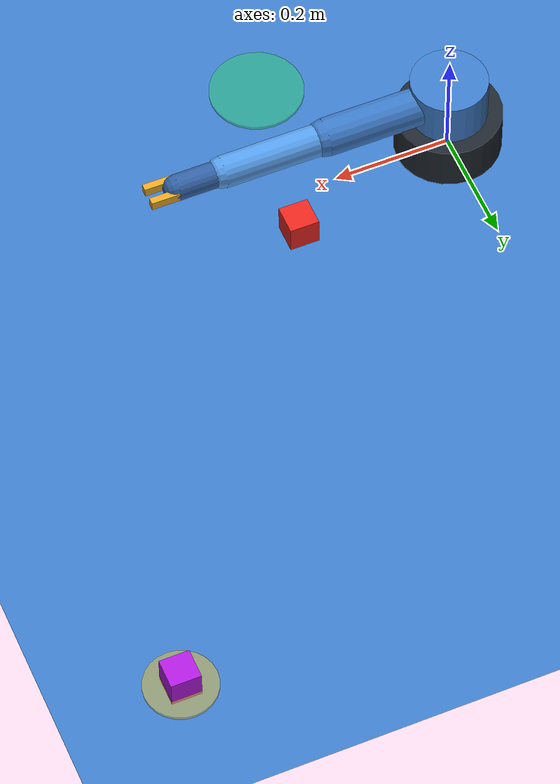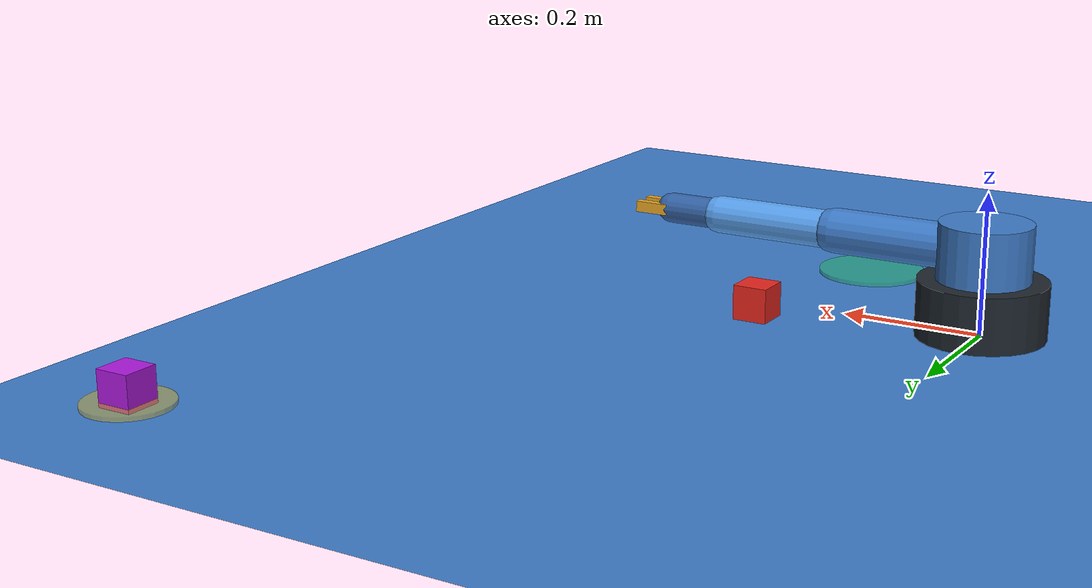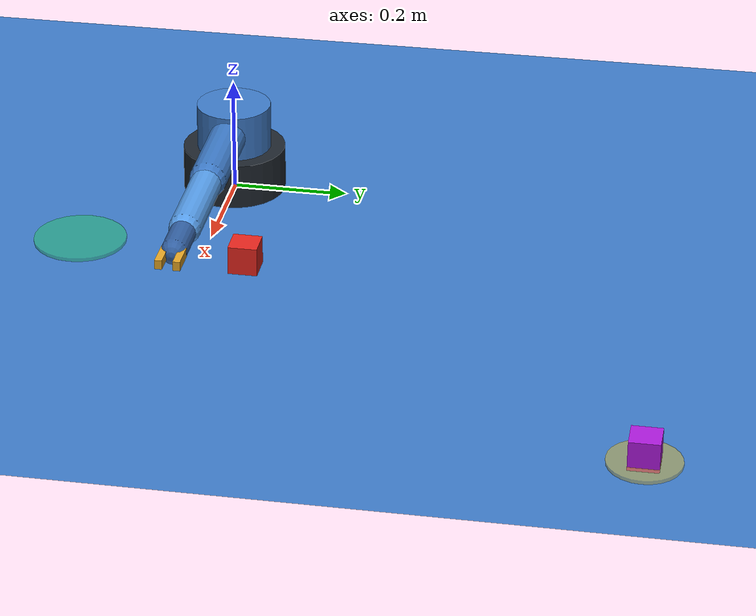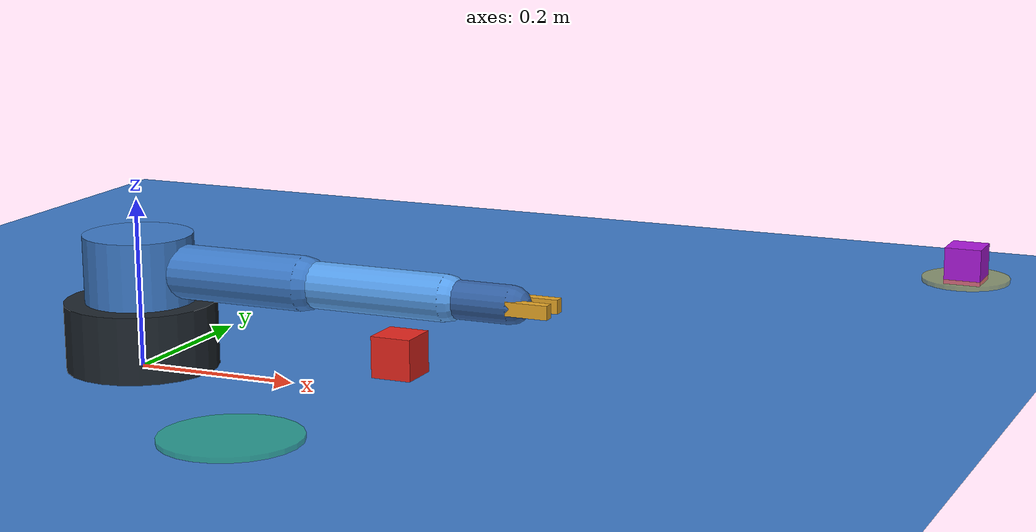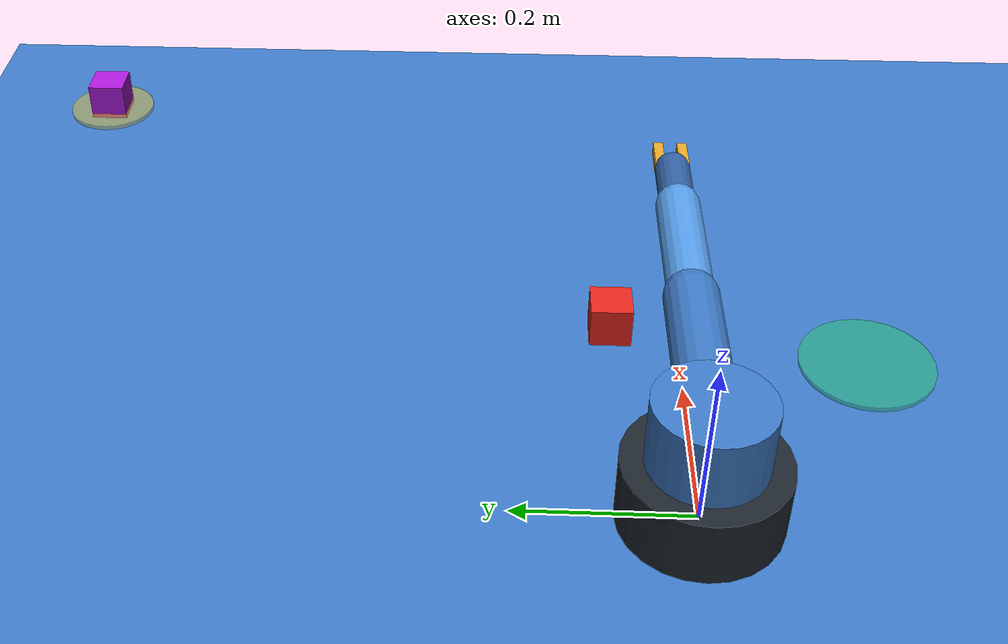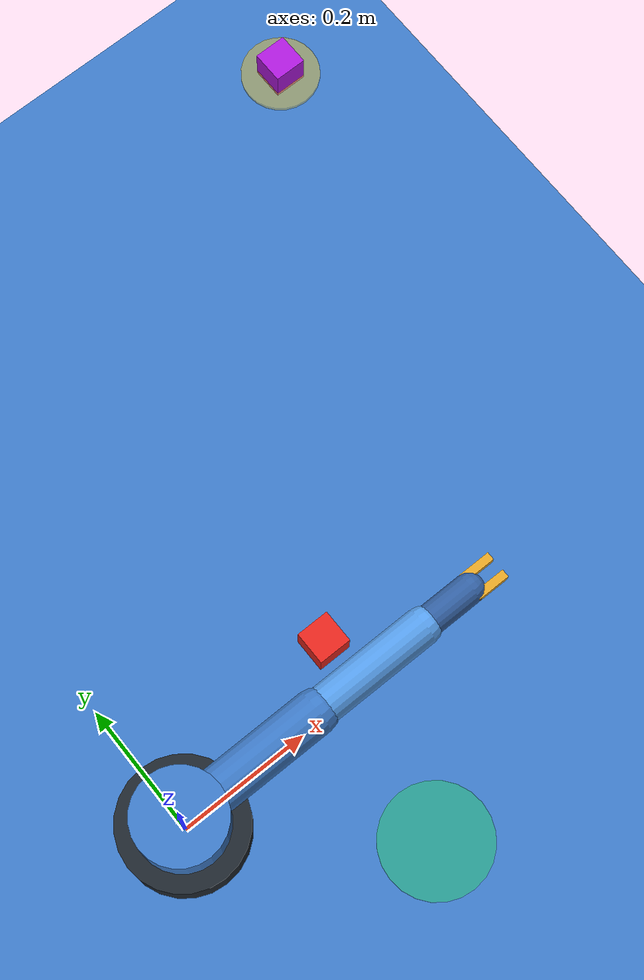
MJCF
<mujoco model="buddy_manipulator">
  <compiler angle="radian"/>
  <option timestep="0.002" gravity="0 0 -9.81" integrator="implicitfast"/>

  <default>
    <joint damping="1.5" armature="0.05"/>
    <geom friction="0.8 0.1 0.1" density="650" rgba="0.24 0.48 0.78 1"/>
    <position kp="80" kv="10" forcerange="-30 30"/>
  </default>

  <visual>
    <headlight diffuse="0.7 0.7 0.7" ambient="0.35 0.35 0.35"/>
    <rgba haze="0.15 0.25 0.35 1"/>
  </visual>

  <asset>
    <texture type="skybox" builtin="gradient" rgb1="0.12 0.18 0.25" rgb2="0.02 0.03 0.05" width="512" height="512"/>
    <texture name="grid" type="2d" builtin="checker" rgb1="0.18 0.19 0.20" rgb2="0.12 0.13 0.14" width="512" height="512"/>
    <material name="floor" texture="grid" texrepeat="4 4" reflectance="0.1"/>
  </asset>

  <worldbody>
    <light pos="0 -0.5 1.3" dir="0 0.4 -1" directional="true"/>
    <geom name="floor" type="plane" size="1 1 0.05" material="floor"/>
    <camera name="overview" pos="0.75 -0.75 0.60" xyaxes="0.7 0.7 0 -0.35 0.35 0.87"/>
    <camera name="workspace_camera" pos="0.25 0 0.75" xyaxes="1 0 0 0 1 0" fovy="48"/>

    <body name="pedestal" pos="0 0 0.04">
      <geom type="cylinder" size="0.09 0.04" rgba="0.12 0.15 0.18 1"/>
      <body name="base" pos="0 0 0.08">
        <joint name="base_yaw" type="hinge" axis="0 0 1" range="-3.14 3.14"/>
        <geom type="cylinder" size="0.065 0.04"/>

        <body name="upper_arm">
          <joint name="shoulder_joint" type="hinge" axis="0 -1 0" range="-1.57 1.57"/>
          <geom type="capsule" fromto="0 0 0 0.22 0 0" size="0.032"/>
          <body name="forearm" pos="0.22 0 0">
            <joint name="elbow_joint" type="hinge" axis="0 -1 0" range="-2.40 2.40"/>
            <geom type="capsule" fromto="0 0 0 0.18 0 0" size="0.027" rgba="0.34 0.62 0.92 1"/>
            <body name="wrist" pos="0.18 0 0">
              <joint name="wrist_joint" type="hinge" axis="0 -1 0" range="-2.80 2.80"/>
              <geom type="capsule" fromto="0 0 0 0.08 0 0" size="0.022" rgba="0.20 0.38 0.64 1"/>
              <site name="tool_tip" pos="0.08 0 0" size="0.008" rgba="1 0.8 0.1 1"/>

              <body name="left_finger" pos="0.08 0.015 0">
                <joint name="left_finger_joint" type="slide" axis="0 1 0" range="0 0.03"/>
                <geom name="left_finger_pad" type="box" pos="0.025 0 0" size="0.025 0.006 0.008" rgba="0.9 0.65 0.15 1"/>
              </body>
              <body name="right_finger" pos="0.08 -0.015 0">
                <joint name="right_finger_joint" type="slide" axis="0 -1 0" range="0 0.03"/>
                <geom name="right_finger_pad" type="box" pos="0.025 0 0" size="0.025 0.006 0.008" rgba="0.9 0.65 0.15 1"/>
              </body>
            </body>
          </body>
        </body>
      </body>
    </body>

    <body name="red_block" pos="0.30 0.08 0.025">
      <freejoint name="red_block_free"/>
      <geom type="box" size="0.025 0.025 0.025" density="400" rgba="0.9 0.15 0.12 1"/>
    </body>
    <body name="purple_block" pos="0.80 0.80 0.025">
      <freejoint name="purple_block_free"/>
      <geom type="box" size="0.025 0.025 0.025" density="400" rgba="0.68 0.10 0.86 1"/>
    </body>
    <geom name="goal_zone" type="cylinder" pos="0.25 -0.22 0.003" size="0.08 0.003" contype="0" conaffinity="0" rgba="0.1 0.8 0.35 0.45"/>
    <body name="yellow_goal_zone_body" pos="0.80 0.80 0">
      <geom name="yellow_goal_zone" type="cylinder" pos="0 0 0.003" size="0.06 0.003" contype="0" conaffinity="0" rgba="0.95 0.75 0.08 0.45"/>
    </body>
  </worldbody>

  <actuator>
    <position name="base" joint="base_yaw" ctrlrange="-3.14 3.14"/>
    <position name="shoulder" joint="shoulder_joint" ctrlrange="-1.57 1.57"/>
    <position name="elbow" joint="elbow_joint" ctrlrange="-2.40 2.40"/>
    <position name="wrist" joint="wrist_joint" ctrlrange="-2.80 2.80"/>
    <position name="left_finger" joint="left_finger_joint" ctrlrange="0 0.03" kp="120" kv="8"/>
    <position name="right_finger" joint="right_finger_joint" ctrlrange="0 0.03" kp="120" kv="8"/>
  </actuator>
</mujoco>
